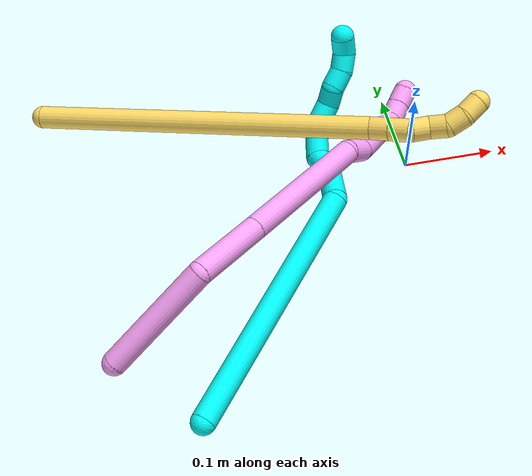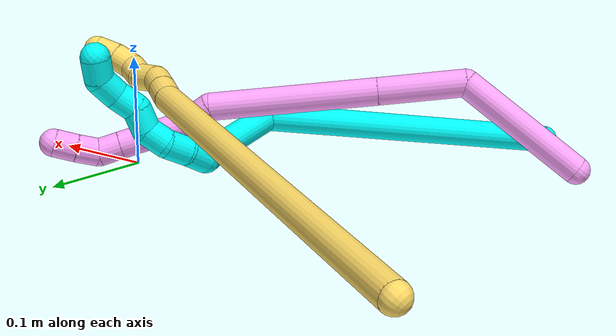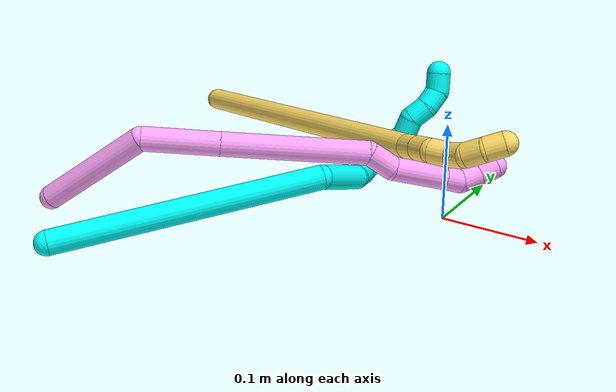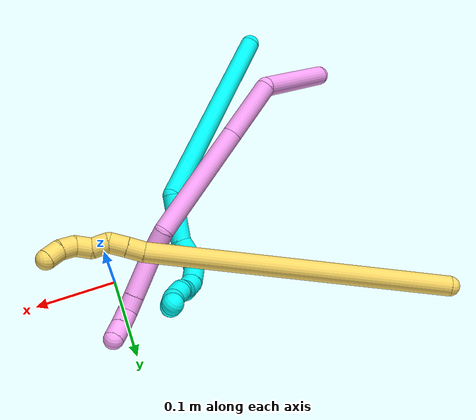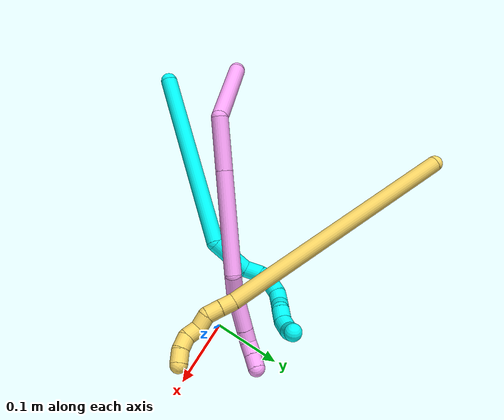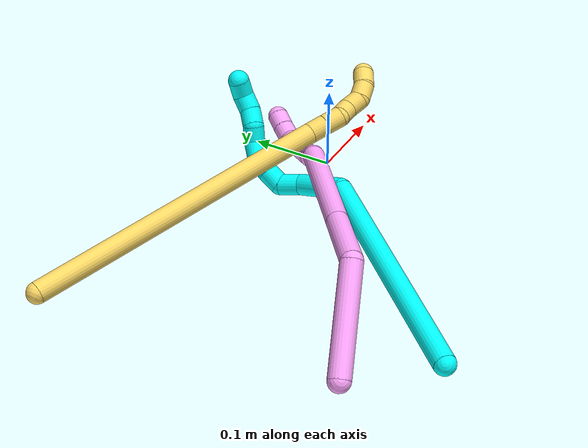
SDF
<sdf version="1.7">
 <world name="default">
  <model name="3">
   <static>0</static>
   <link name="3">
    <collision name="collision-cylinder-e_1_1_4">
     <pose>0.072057 0.089843 -0.072502 -2.24978 0.557988 -1.07978</pose>
     <geometry><cylinder><radius>0.0125</radius><length>0.272179</length></cylinder></geometry>
     <surface>
      <friction><ode><mu>1.16</mu><mu2>1.16</mu2><slip1>0</slip1><slip2>0</slip2></ode></friction>
      <contact><ode><kp>1e+06</kp><kd>1</kd><max_vel>0</max_vel><min_depth>0.001</min_depth></ode></contact>
     </surface>
    </collision>
    <visual name="visual-cylinder-e_1_1_4">
     <pose>0.072057 0.089843 -0.072502 -2.24978 0.557988 -1.07978</pose>
     <geometry><cylinder><radius>0.0125</radius><length>0.272179</length></cylinder></geometry>
     <material><ambient>0.003922 1 0.996078 1</ambient></material>
    </visual>
    <collision name="collision-cylinder-e_2_4_5">
     <pose>0.139743 0.203593 -0.161823 -2.18387 -0.148409 0.284452</pose>
     <geometry><cylinder><radius>0.0125</radius><length>0.059112</length></cylinder></geometry>
     <surface>
      <friction><ode><mu>1.16</mu><mu2>1.16</mu2><slip1>0</slip1><slip2>0</slip2></ode></friction>
      <contact><ode><kp>1e+06</kp><kd>1</kd><max_vel>0</max_vel><min_depth>0.001</min_depth></ode></contact>
     </surface>
    </collision>
    <visual name="visual-cylinder-e_2_4_5">
     <pose>0.139743 0.203593 -0.161823 -2.18387 -0.148409 0.284452</pose>
     <geometry><cylinder><radius>0.0125</radius><length>0.059112</length></cylinder></geometry>
     <material><ambient>0.003922 1 0.996078 1</ambient></material>
    </visual>
    <collision name="collision-cylinder-e_3_5_6">
     <pose>0.130841 0.239225 -0.181825 -1.83591 -0.357025 0.463431</pose>
     <geometry><cylinder><radius>0.0125</radius><length>0.025934</length></cylinder></geometry>
     <surface>
      <friction><ode><mu>1.16</mu><mu2>1.16</mu2><slip1>0</slip1><slip2>0</slip2></ode></friction>
      <contact><ode><kp>1e+06</kp><kd>1</kd><max_vel>0</max_vel><min_depth>0.001</min_depth></ode></contact>
     </surface>
    </collision>
    <visual name="visual-cylinder-e_3_5_6">
     <pose>0.130841 0.239225 -0.181825 -1.83591 -0.357025 0.463431</pose>
     <geometry><cylinder><radius>0.0125</radius><length>0.025934</length></cylinder></geometry>
     <material><ambient>0.003922 1 0.996078 1</ambient></material>
    </visual>
    <collision name="collision-cylinder-e_4_6_7">
     <pose>0.130277 0.260754 -0.185016 -1.57155 0.384526 -0.38481</pose>
     <geometry><cylinder><radius>0.0125</radius><length>0.021154</length></cylinder></geometry>
     <surface>
      <friction><ode><mu>1.16</mu><mu2>1.16</mu2><slip1>0</slip1><slip2>0</slip2></ode></friction>
      <contact><ode><kp>1e+06</kp><kd>1</kd><max_vel>0</max_vel><min_depth>0.001</min_depth></ode></contact>
     </surface>
    </collision>
    <visual name="visual-cylinder-e_4_6_7">
     <pose>0.130277 0.260754 -0.185016 -1.57155 0.384526 -0.38481</pose>
     <geometry><cylinder><radius>0.0125</radius><length>0.021154</length></cylinder></geometry>
     <material><ambient>0.003922 1 0.996078 1</ambient></material>
    </visual>
    <collision name="collision-cylinder-e_5_7_8">
     <pose>0.139706 0.279589 -0.186647 -1.74874 0.536873 -0.635622</pose>
     <geometry><cylinder><radius>0.0125</radius><length>0.021354</length></cylinder></geometry>
     <surface>
      <friction><ode><mu>1.16</mu><mu2>1.16</mu2><slip1>0</slip1><slip2>0</slip2></ode></friction>
      <contact><ode><kp>1e+06</kp><kd>1</kd><max_vel>0</max_vel><min_depth>0.001</min_depth></ode></contact>
     </surface>
    </collision>
    <visual name="visual-cylinder-e_5_7_8">
     <pose>0.139706 0.279589 -0.186647 -1.74874 0.536873 -0.635622</pose>
     <geometry><cylinder><radius>0.0125</radius><length>0.021354</length></cylinder></geometry>
     <material><ambient>0.003922 1 0.996078 1</ambient></material>
    </visual>
    <collision name="collision-cylinder-e_6_8_9">
     <pose>0.15318 0.294633 -0.189245 -1.73122 0.920716 -1.05504</pose>
     <geometry><cylinder><radius>0.0125</radius><length>0.020134</length></cylinder></geometry>
     <surface>
      <friction><ode><mu>1.16</mu><mu2>1.16</mu2><slip1>0</slip1><slip2>0</slip2></ode></friction>
      <contact><ode><kp>1e+06</kp><kd>1</kd><max_vel>0</max_vel><min_depth>0.001</min_depth></ode></contact>
     </surface>
    </collision>
    <visual name="visual-cylinder-e_6_8_9">
     <pose>0.15318 0.294633 -0.189245 -1.73122 0.920716 -1.05504</pose>
     <geometry><cylinder><radius>0.0125</radius><length>0.020134</length></cylinder></geometry>
     <material><ambient>0.003922 1 0.996078 1</ambient></material>
    </visual>
    <collision name="collision-cylinder-e_7_9_10">
     <pose>0.16926 0.304824 -0.185951 -0.77456 0.933665 -0.405483</pose>
     <geometry><cylinder><radius>0.0125</radius><length>0.020071</length></cylinder></geometry>
     <surface>
      <friction><ode><mu>1.16</mu><mu2>1.16</mu2><slip1>0</slip1><slip2>0</slip2></ode></friction>
      <contact><ode><kp>1e+06</kp><kd>1</kd><max_vel>0</max_vel><min_depth>0.001</min_depth></ode></contact>
     </surface>
    </collision>
    <visual name="visual-cylinder-e_7_9_10">
     <pose>0.16926 0.304824 -0.185951 -0.77456 0.933665 -0.405483</pose>
     <geometry><cylinder><radius>0.0125</radius><length>0.020071</length></cylinder></geometry>
     <material><ambient>0.003922 1 0.996078 1</ambient></material>
    </visual>
    <collision name="collision-cylinder-e_8_10_11">
     <pose>0.185365 0.314905 -0.182661 -1.73476 0.93063 -1.069</pose>
     <geometry><cylinder><radius>0.0125</radius><length>0.020045</length></cylinder></geometry>
     <surface>
      <friction><ode><mu>1.16</mu><mu2>1.16</mu2><slip1>0</slip1><slip2>0</slip2></ode></friction>
      <contact><ode><kp>1e+06</kp><kd>1</kd><max_vel>0</max_vel><min_depth>0.001</min_depth></ode></contact>
     </surface>
    </collision>
    <visual name="visual-cylinder-e_8_10_11">
     <pose>0.185365 0.314905 -0.182661 -1.73476 0.93063 -1.069</pose>
     <geometry><cylinder><radius>0.0125</radius><length>0.020045</length></cylinder></geometry>
     <material><ambient>0.003922 1 0.996078 1</ambient></material>
    </visual>
    <collision name="collision-cylinder-e_9_11_12">
     <pose>0.19989 0.328281 -0.18214 -1.3728 0.705463 -0.585859</pose>
     <geometry><cylinder><radius>0.0125</radius><length>0.020012</length></cylinder></geometry>
     <surface>
      <friction><ode><mu>1.16</mu><mu2>1.16</mu2><slip1>0</slip1><slip2>0</slip2></ode></friction>
      <contact><ode><kp>1e+06</kp><kd>1</kd><max_vel>0</max_vel><min_depth>0.001</min_depth></ode></contact>
     </surface>
    </collision>
    <visual name="visual-cylinder-e_9_11_12">
     <pose>0.19989 0.328281 -0.18214 -1.3728 0.705463 -0.585859</pose>
     <geometry><cylinder><radius>0.0125</radius><length>0.020012</length></cylinder></geometry>
     <material><ambient>0.003922 1 0.996078 1</ambient></material>
    </visual>
    <collision name="collision-cylinder-e_10_12_2">
     <pose>0.211898 0.340591 -0.173848 -0.619205 0.584625 -0.191939</pose>
     <geometry><cylinder><radius>0.0125</radius><length>0.020006</length></cylinder></geometry>
     <surface>
      <friction><ode><mu>1.16</mu><mu2>1.16</mu2><slip1>0</slip1><slip2>0</slip2></ode></friction>
      <contact><ode><kp>1e+06</kp><kd>1</kd><max_vel>0</max_vel><min_depth>0.001</min_depth></ode></contact>
     </surface>
    </collision>
    <visual name="visual-cylinder-e_10_12_2">
     <pose>0.211898 0.340591 -0.173848 -0.619205 0.584625 -0.191939</pose>
     <geometry><cylinder><radius>0.0125</radius><length>0.020006</length></cylinder></geometry>
     <material><ambient>0.003922 1 0.996078 1</ambient></material>
    </visual>
    <collision name="collision-sphere-2">
     <pose>0.217419 0.345432 -0.167056 0 -0 0</pose>
     <geometry><sphere><radius>0.0125</radius></sphere></geometry>
     <surface>
      <friction><ode><mu>1.16</mu><mu2>1.16</mu2><slip1>0</slip1><slip2>0</slip2></ode></friction>
      <contact><ode><kp>1e+06</kp><kd>1</kd><max_vel>0</max_vel><min_depth>0.001</min_depth></ode></contact>
     </surface>
    </collision>
    <visual name="visual-sphere-2">
     <pose>0.217419 0.345432 -0.167056 0 -0 0</pose>
     <geometry><sphere><radius>0.0125</radius></sphere></geometry>
     <material><ambient>0.003922 1 0.996078 1</ambient></material>
    </visual>
    <collision name="collision-sphere-12">
     <pose>0.206378 0.335749 -0.180641 0 -0 0</pose>
     <geometry><sphere><radius>0.0125</radius></sphere></geometry>
     <surface>
      <friction><ode><mu>1.16</mu><mu2>1.16</mu2><slip1>0</slip1><slip2>0</slip2></ode></friction>
      <contact><ode><kp>1e+06</kp><kd>1</kd><max_vel>0</max_vel><min_depth>0.001</min_depth></ode></contact>
     </surface>
    </collision>
    <visual name="visual-sphere-12">
     <pose>0.206378 0.335749 -0.180641 0 -0 0</pose>
     <geometry><sphere><radius>0.0125</radius></sphere></geometry>
     <material><ambient>0.003922 1 0.996078 1</ambient></material>
    </visual>
    <collision name="collision-sphere-11">
     <pose>0.193402 0.320812 -0.183638 0 -0 0</pose>
     <geometry><sphere><radius>0.0125</radius></sphere></geometry>
     <surface>
      <friction><ode><mu>1.16</mu><mu2>1.16</mu2><slip1>0</slip1><slip2>0</slip2></ode></friction>
      <contact><ode><kp>1e+06</kp><kd>1</kd><max_vel>0</max_vel><min_depth>0.001</min_depth></ode></contact>
     </surface>
    </collision>
    <visual name="visual-sphere-11">
     <pose>0.193402 0.320812 -0.183638 0 -0 0</pose>
     <geometry><sphere><radius>0.0125</radius></sphere></geometry>
     <material><ambient>0.003922 1 0.996078 1</ambient></material>
    </visual>
    <collision name="collision-sphere-10">
     <pose>0.177327 0.308999 -0.181684 0 -0 0</pose>
     <geometry><sphere><radius>0.0125</radius></sphere></geometry>
     <surface>
      <friction><ode><mu>1.16</mu><mu2>1.16</mu2><slip1>0</slip1><slip2>0</slip2></ode></friction>
      <contact><ode><kp>1e+06</kp><kd>1</kd><max_vel>0</max_vel><min_depth>0.001</min_depth></ode></contact>
     </surface>
    </collision>
    <visual name="visual-sphere-10">
     <pose>0.177327 0.308999 -0.181684 0 -0 0</pose>
     <geometry><sphere><radius>0.0125</radius></sphere></geometry>
     <material><ambient>0.003922 1 0.996078 1</ambient></material>
    </visual>
    <collision name="collision-sphere-9">
     <pose>0.161193 0.300648 -0.190218 0 -0 0</pose>
     <geometry><sphere><radius>0.0125</radius></sphere></geometry>
     <surface>
      <friction><ode><mu>1.16</mu><mu2>1.16</mu2><slip1>0</slip1><slip2>0</slip2></ode></friction>
      <contact><ode><kp>1e+06</kp><kd>1</kd><max_vel>0</max_vel><min_depth>0.001</min_depth></ode></contact>
     </surface>
    </collision>
    <visual name="visual-sphere-9">
     <pose>0.161193 0.300648 -0.190218 0 -0 0</pose>
     <geometry><sphere><radius>0.0125</radius></sphere></geometry>
     <material><ambient>0.003922 1 0.996078 1</ambient></material>
    </visual>
    <collision name="collision-sphere-4">
     <pose>0.144114 0.179685 -0.145004 0 -0 0</pose>
     <geometry><sphere><radius>0.0125</radius></sphere></geometry>
     <surface>
      <friction><ode><mu>1.16</mu><mu2>1.16</mu2><slip1>0</slip1><slip2>0</slip2></ode></friction>
      <contact><ode><kp>1e+06</kp><kd>1</kd><max_vel>0</max_vel><min_depth>0.001</min_depth></ode></contact>
     </surface>
    </collision>
    <visual name="visual-sphere-4">
     <pose>0.144114 0.179685 -0.145004 0 -0 0</pose>
     <geometry><sphere><radius>0.0125</radius></sphere></geometry>
     <material><ambient>0.003922 1 0.996078 1</ambient></material>
    </visual>
    <collision name="collision-sphere-1">
     <geometry><sphere><radius>0.0125</radius></sphere></geometry>
     <surface>
      <friction><ode><mu>1.16</mu><mu2>1.16</mu2><slip1>0</slip1><slip2>0</slip2></ode></friction>
      <contact><ode><kp>1e+06</kp><kd>1</kd><max_vel>0</max_vel><min_depth>0.001</min_depth></ode></contact>
     </surface>
    </collision>
    <visual name="visual-sphere-1">
     <geometry><sphere><radius>0.0125</radius></sphere></geometry>
     <material><ambient>0.003922 1 0.996078 1</ambient></material>
    </visual>
    <collision name="collision-sphere-8">
     <pose>0.145166 0.288619 -0.188271 0 -0 0</pose>
     <geometry><sphere><radius>0.0125</radius></sphere></geometry>
     <surface>
      <friction><ode><mu>1.16</mu><mu2>1.16</mu2><slip1>0</slip1><slip2>0</slip2></ode></friction>
      <contact><ode><kp>1e+06</kp><kd>1</kd><max_vel>0</max_vel><min_depth>0.001</min_depth></ode></contact>
     </surface>
    </collision>
    <visual name="visual-sphere-8">
     <pose>0.145166 0.288619 -0.188271 0 -0 0</pose>
     <geometry><sphere><radius>0.0125</radius></sphere></geometry>
     <material><ambient>0.003922 1 0.996078 1</ambient></material>
    </visual>
    <collision name="collision-sphere-5">
     <pose>0.135373 0.2275 -0.178642 0 -0 0</pose>
     <geometry><sphere><radius>0.0125</radius></sphere></geometry>
     <surface>
      <friction><ode><mu>1.16</mu><mu2>1.16</mu2><slip1>0</slip1><slip2>0</slip2></ode></friction>
      <contact><ode><kp>1e+06</kp><kd>1</kd><max_vel>0</max_vel><min_depth>0.001</min_depth></ode></contact>
     </surface>
    </collision>
    <visual name="visual-sphere-5">
     <pose>0.135373 0.2275 -0.178642 0 -0 0</pose>
     <geometry><sphere><radius>0.0125</radius></sphere></geometry>
     <material><ambient>0.003922 1 0.996078 1</ambient></material>
    </visual>
    <collision name="collision-sphere-6">
     <pose>0.12631 0.25095 -0.185008 0 -0 0</pose>
     <geometry><sphere><radius>0.0125</radius></sphere></geometry>
     <surface>
      <friction><ode><mu>1.16</mu><mu2>1.16</mu2><slip1>0</slip1><slip2>0</slip2></ode></friction>
      <contact><ode><kp>1e+06</kp><kd>1</kd><max_vel>0</max_vel><min_depth>0.001</min_depth></ode></contact>
     </surface>
    </collision>
    <visual name="visual-sphere-6">
     <pose>0.12631 0.25095 -0.185008 0 -0 0</pose>
     <geometry><sphere><radius>0.0125</radius></sphere></geometry>
     <material><ambient>0.003922 1 0.996078 1</ambient></material>
    </visual>
    <collision name="collision-sphere-7">
     <pose>0.134245 0.270559 -0.185023 0 -0 0</pose>
     <geometry><sphere><radius>0.0125</radius></sphere></geometry>
     <surface>
      <friction><ode><mu>1.16</mu><mu2>1.16</mu2><slip1>0</slip1><slip2>0</slip2></ode></friction>
      <contact><ode><kp>1e+06</kp><kd>1</kd><max_vel>0</max_vel><min_depth>0.001</min_depth></ode></contact>
     </surface>
    </collision>
    <visual name="visual-sphere-7">
     <pose>0.134245 0.270559 -0.185023 0 -0 0</pose>
     <geometry><sphere><radius>0.0125</radius></sphere></geometry>
     <material><ambient>0.003922 1 0.996078 1</ambient></material>
    </visual>
    <inertial>
     <pose>0.110883 0.171848 -0.120482 0 -0 0</pose>
     <mass>0.5</mass>
     <inertia>
      <ixx>-0.000542</ixx>
      <ixy>0</ixy>
      <ixz>0</ixz>
      <iyy>-0.001127</iyy>
      <iyz>0</iyz>
      <izz>-0.002053</izz>
     </inertia>
    </inertial>
   </link>
   <pose>-0.274356 -0.27525 0.012446 0.328549 -0.710198 -0.063316</pose>
  </model>
  <model name="4">
   <static>0</static>
   <link name="4">
    <collision name="collision-cylinder-e_1_1_4">
     <pose>0.05941 0.014817 0.002351 -1.41345 1.32346 -1.17376</pose>
     <geometry><cylinder><radius>0.0125</radius><length>0.12255</length></cylinder></geometry>
     <surface>
      <friction><ode><mu>1.16</mu><mu2>1.16</mu2><slip1>0</slip1><slip2>0</slip2></ode></friction>
      <contact><ode><kp>1e+06</kp><kd>1</kd><max_vel>0</max_vel><min_depth>0.001</min_depth></ode></contact>
     </surface>
    </collision>
    <visual name="visual-cylinder-e_1_1_4">
     <pose>0.05941 0.014817 0.002351 -1.41345 1.32346 -1.17376</pose>
     <geometry><cylinder><radius>0.0125</radius><length>0.12255</length></cylinder></geometry>
     <material><ambient>1 0.65098 0.996078 1</ambient></material>
    </visual>
    <collision name="collision-cylinder-e_2_4_5">
     <pose>0.14575 0.041398 -0.021327 -2.71709 0.755942 -2.1471</pose>
     <geometry><cylinder><radius>0.0125</radius><length>0.078513</length></cylinder></geometry>
     <surface>
      <friction><ode><mu>1.16</mu><mu2>1.16</mu2><slip1>0</slip1><slip2>0</slip2></ode></friction>
      <contact><ode><kp>1e+06</kp><kd>1</kd><max_vel>0</max_vel><min_depth>0.001</min_depth></ode></contact>
     </surface>
    </collision>
    <visual name="visual-cylinder-e_2_4_5">
     <pose>0.14575 0.041398 -0.021327 -2.71709 0.755942 -2.1471</pose>
     <geometry><cylinder><radius>0.0125</radius><length>0.078513</length></cylinder></geometry>
     <material><ambient>1 0.65098 0.996078 1</ambient></material>
    </visual>
    <collision name="collision-cylinder-e_3_5_6">
     <pose>0.224286 0.075896 -0.096791 -2.71055 0.758954 -2.13754</pose>
     <geometry><cylinder><radius>0.0125</radius><length>0.149988</length></cylinder></geometry>
     <surface>
      <friction><ode><mu>1.16</mu><mu2>1.16</mu2><slip1>0</slip1><slip2>0</slip2></ode></friction>
      <contact><ode><kp>1e+06</kp><kd>1</kd><max_vel>0</max_vel><min_depth>0.001</min_depth></ode></contact>
     </surface>
    </collision>
    <visual name="visual-cylinder-e_3_5_6">
     <pose>0.224286 0.075896 -0.096791 -2.71055 0.758954 -2.13754</pose>
     <geometry><cylinder><radius>0.0125</radius><length>0.149988</length></cylinder></geometry>
     <material><ambient>1 0.65098 0.996078 1</ambient></material>
    </visual>
    <collision name="collision-cylinder-e_4_6_7">
     <pose>0.280829 0.099735 -0.160241 -3.06291 0.337575 -2.68757</pose>
     <geometry><cylinder><radius>0.0125</radius><length>0.029798</length></cylinder></geometry>
     <surface>
      <friction><ode><mu>1.16</mu><mu2>1.16</mu2><slip1>0</slip1><slip2>0</slip2></ode></friction>
      <contact><ode><kp>1e+06</kp><kd>1</kd><max_vel>0</max_vel><min_depth>0.001</min_depth></ode></contact>
     </surface>
    </collision>
    <visual name="visual-cylinder-e_4_6_7">
     <pose>0.280829 0.099735 -0.160241 -3.06291 0.337575 -2.68757</pose>
     <geometry><cylinder><radius>0.0125</radius><length>0.029798</length></cylinder></geometry>
     <material><ambient>1 0.65098 0.996078 1</ambient></material>
    </visual>
    <collision name="collision-cylinder-e_5_7_8">
     <pose>0.299942 0.111594 -0.197192 -2.70317 0.510284 -1.72776</pose>
     <geometry><cylinder><radius>0.0125</radius><length>0.058059</length></cylinder></geometry>
     <surface>
      <friction><ode><mu>1.16</mu><mu2>1.16</mu2><slip1>0</slip1><slip2>0</slip2></ode></friction>
      <contact><ode><kp>1e+06</kp><kd>1</kd><max_vel>0</max_vel><min_depth>0.001</min_depth></ode></contact>
     </surface>
    </collision>
    <visual name="visual-cylinder-e_5_7_8">
     <pose>0.299942 0.111594 -0.197192 -2.70317 0.510284 -1.72776</pose>
     <geometry><cylinder><radius>0.0125</radius><length>0.058059</length></cylinder></geometry>
     <material><ambient>1 0.65098 0.996078 1</ambient></material>
    </visual>
    <collision name="collision-cylinder-e_6_8_9">
     <pose>0.318993 0.126071 -0.228255 -2.71203 0.498914 -1.72534</pose>
     <geometry><cylinder><radius>0.0125</radius><length>0.020363</length></cylinder></geometry>
     <surface>
      <friction><ode><mu>1.16</mu><mu2>1.16</mu2><slip1>0</slip1><slip2>0</slip2></ode></friction>
      <contact><ode><kp>1e+06</kp><kd>1</kd><max_vel>0</max_vel><min_depth>0.001</min_depth></ode></contact>
     </surface>
    </collision>
    <visual name="visual-cylinder-e_6_8_9">
     <pose>0.318993 0.126071 -0.228255 -2.71203 0.498914 -1.72534</pose>
     <geometry><cylinder><radius>0.0125</radius><length>0.020363</length></cylinder></geometry>
     <material><ambient>1 0.65098 0.996078 1</ambient></material>
    </visual>
    <collision name="collision-cylinder-e_7_9_10">
     <pose>0.331119 0.136146 -0.240051 -2.0945 0.779947 -1.23747</pose>
     <geometry><cylinder><radius>0.0125</radius><length>0.020633</length></cylinder></geometry>
     <surface>
      <friction><ode><mu>1.16</mu><mu2>1.16</mu2><slip1>0</slip1><slip2>0</slip2></ode></friction>
      <contact><ode><kp>1e+06</kp><kd>1</kd><max_vel>0</max_vel><min_depth>0.001</min_depth></ode></contact>
     </surface>
    </collision>
    <visual name="visual-cylinder-e_7_9_10">
     <pose>0.331119 0.136146 -0.240051 -2.0945 0.779947 -1.23747</pose>
     <geometry><cylinder><radius>0.0125</radius><length>0.020633</length></cylinder></geometry>
     <material><ambient>1 0.65098 0.996078 1</ambient></material>
    </visual>
    <collision name="collision-cylinder-e_8_10_2">
     <pose>0.345732 0.148559 -0.246895 -2.05334 0.821612 -1.24795</pose>
     <geometry><cylinder><radius>0.0125</radius><length>0.020096</length></cylinder></geometry>
     <surface>
      <friction><ode><mu>1.16</mu><mu2>1.16</mu2><slip1>0</slip1><slip2>0</slip2></ode></friction>
      <contact><ode><kp>1e+06</kp><kd>1</kd><max_vel>0</max_vel><min_depth>0.001</min_depth></ode></contact>
     </surface>
    </collision>
    <visual name="visual-cylinder-e_8_10_2">
     <pose>0.345732 0.148559 -0.246895 -2.05334 0.821612 -1.24795</pose>
     <geometry><cylinder><radius>0.0125</radius><length>0.020096</length></cylinder></geometry>
     <material><ambient>1 0.65098 0.996078 1</ambient></material>
    </visual>
    <collision name="collision-sphere-2">
     <pose>0.353089 0.154621 -0.25007 0 -0 0</pose>
     <geometry><sphere><radius>0.0125</radius></sphere></geometry>
     <surface>
      <friction><ode><mu>1.16</mu><mu2>1.16</mu2><slip1>0</slip1><slip2>0</slip2></ode></friction>
      <contact><ode><kp>1e+06</kp><kd>1</kd><max_vel>0</max_vel><min_depth>0.001</min_depth></ode></contact>
     </surface>
    </collision>
    <visual name="visual-sphere-2">
     <pose>0.353089 0.154621 -0.25007 0 -0 0</pose>
     <geometry><sphere><radius>0.0125</radius></sphere></geometry>
     <material><ambient>1 0.65098 0.996078 1</ambient></material>
    </visual>
    <collision name="collision-sphere-10">
     <pose>0.338374 0.142497 -0.243719 0 -0 0</pose>
     <geometry><sphere><radius>0.0125</radius></sphere></geometry>
     <surface>
      <friction><ode><mu>1.16</mu><mu2>1.16</mu2><slip1>0</slip1><slip2>0</slip2></ode></friction>
      <contact><ode><kp>1e+06</kp><kd>1</kd><max_vel>0</max_vel><min_depth>0.001</min_depth></ode></contact>
     </surface>
    </collision>
    <visual name="visual-sphere-10">
     <pose>0.338374 0.142497 -0.243719 0 -0 0</pose>
     <geometry><sphere><radius>0.0125</radius></sphere></geometry>
     <material><ambient>1 0.65098 0.996078 1</ambient></material>
    </visual>
    <collision name="collision-sphere-9">
     <pose>0.323864 0.129795 -0.236383 0 -0 0</pose>
     <geometry><sphere><radius>0.0125</radius></sphere></geometry>
     <surface>
      <friction><ode><mu>1.16</mu><mu2>1.16</mu2><slip1>0</slip1><slip2>0</slip2></ode></friction>
      <contact><ode><kp>1e+06</kp><kd>1</kd><max_vel>0</max_vel><min_depth>0.001</min_depth></ode></contact>
     </surface>
    </collision>
    <visual name="visual-sphere-9">
     <pose>0.323864 0.129795 -0.236383 0 -0 0</pose>
     <geometry><sphere><radius>0.0125</radius></sphere></geometry>
     <material><ambient>1 0.65098 0.996078 1</ambient></material>
    </visual>
    <collision name="collision-sphere-4">
     <pose>0.118821 0.029633 0.004701 0 -0 0</pose>
     <geometry><sphere><radius>0.0125</radius></sphere></geometry>
     <surface>
      <friction><ode><mu>1.16</mu><mu2>1.16</mu2><slip1>0</slip1><slip2>0</slip2></ode></friction>
      <contact><ode><kp>1e+06</kp><kd>1</kd><max_vel>0</max_vel><min_depth>0.001</min_depth></ode></contact>
     </surface>
    </collision>
    <visual name="visual-sphere-4">
     <pose>0.118821 0.029633 0.004701 0 -0 0</pose>
     <geometry><sphere><radius>0.0125</radius></sphere></geometry>
     <material><ambient>1 0.65098 0.996078 1</ambient></material>
    </visual>
    <collision name="collision-sphere-1">
     <geometry><sphere><radius>0.0125</radius></sphere></geometry>
     <surface>
      <friction><ode><mu>1.16</mu><mu2>1.16</mu2><slip1>0</slip1><slip2>0</slip2></ode></friction>
      <contact><ode><kp>1e+06</kp><kd>1</kd><max_vel>0</max_vel><min_depth>0.001</min_depth></ode></contact>
     </surface>
    </collision>
    <visual name="visual-sphere-1">
     <geometry><sphere><radius>0.0125</radius></sphere></geometry>
     <material><ambient>1 0.65098 0.996078 1</ambient></material>
    </visual>
    <collision name="collision-sphere-8">
     <pose>0.314121 0.122348 -0.220127 0 -0 0</pose>
     <geometry><sphere><radius>0.0125</radius></sphere></geometry>
     <surface>
      <friction><ode><mu>1.16</mu><mu2>1.16</mu2><slip1>0</slip1><slip2>0</slip2></ode></friction>
      <contact><ode><kp>1e+06</kp><kd>1</kd><max_vel>0</max_vel><min_depth>0.001</min_depth></ode></contact>
     </surface>
    </collision>
    <visual name="visual-sphere-8">
     <pose>0.314121 0.122348 -0.220127 0 -0 0</pose>
     <geometry><sphere><radius>0.0125</radius></sphere></geometry>
     <material><ambient>1 0.65098 0.996078 1</ambient></material>
    </visual>
    <collision name="collision-sphere-5">
     <pose>0.172679 0.053162 -0.047356 0 -0 0</pose>
     <geometry><sphere><radius>0.0125</radius></sphere></geometry>
     <surface>
      <friction><ode><mu>1.16</mu><mu2>1.16</mu2><slip1>0</slip1><slip2>0</slip2></ode></friction>
      <contact><ode><kp>1e+06</kp><kd>1</kd><max_vel>0</max_vel><min_depth>0.001</min_depth></ode></contact>
     </surface>
    </collision>
    <visual name="visual-sphere-5">
     <pose>0.172679 0.053162 -0.047356 0 -0 0</pose>
     <geometry><sphere><radius>0.0125</radius></sphere></geometry>
     <material><ambient>1 0.65098 0.996078 1</ambient></material>
    </visual>
    <collision name="collision-sphere-6">
     <pose>0.275894 0.09863 -0.146226 0 -0 0</pose>
     <geometry><sphere><radius>0.0125</radius></sphere></geometry>
     <surface>
      <friction><ode><mu>1.16</mu><mu2>1.16</mu2><slip1>0</slip1><slip2>0</slip2></ode></friction>
      <contact><ode><kp>1e+06</kp><kd>1</kd><max_vel>0</max_vel><min_depth>0.001</min_depth></ode></contact>
     </surface>
    </collision>
    <visual name="visual-sphere-6">
     <pose>0.275894 0.09863 -0.146226 0 -0 0</pose>
     <geometry><sphere><radius>0.0125</radius></sphere></geometry>
     <material><ambient>1 0.65098 0.996078 1</ambient></material>
    </visual>
    <collision name="collision-sphere-7">
     <pose>0.285764 0.100841 -0.174256 0 -0 0</pose>
     <geometry><sphere><radius>0.0125</radius></sphere></geometry>
     <surface>
      <friction><ode><mu>1.16</mu><mu2>1.16</mu2><slip1>0</slip1><slip2>0</slip2></ode></friction>
      <contact><ode><kp>1e+06</kp><kd>1</kd><max_vel>0</max_vel><min_depth>0.001</min_depth></ode></contact>
     </surface>
    </collision>
    <visual name="visual-sphere-7">
     <pose>0.285764 0.100841 -0.174256 0 -0 0</pose>
     <geometry><sphere><radius>0.0125</radius></sphere></geometry>
     <material><ambient>1 0.65098 0.996078 1</ambient></material>
    </visual>
    <inertial>
     <pose>0.196844 0.068524 -0.09338 0 -0 0</pose>
     <mass>0.5</mass>
     <inertia>
      <ixx>-0.00035</ixx>
      <ixy>0</ixy>
      <ixz>0</ixz>
      <iyy>0.000156</iyy>
      <iyz>0</iyz>
      <izz>-0.000561</izz>
     </inertia>
    </inertial>
   </link>
   <pose>-0.346931 -0.195406 0.011497 0.372912 -0.5177 0.108504</pose>
  </model>
  <model name="5">
   <static>0</static>
   <link name="5">
    <collision name="collision-cylinder-e_1_1_4">
     <pose>0.095794 -0.032602 -0.158162 2.93831 0.535404 2.42959</pose>
     <geometry><cylinder><radius>0.0125</radius><length>0.375525</length></cylinder></geometry>
     <surface>
      <friction><ode><mu>1.16</mu><mu2>1.16</mu2><slip1>0</slip1><slip2>0</slip2></ode></friction>
      <contact><ode><kp>1e+06</kp><kd>1</kd><max_vel>0</max_vel><min_depth>0.001</min_depth></ode></contact>
     </surface>
    </collision>
    <visual name="visual-cylinder-e_1_1_4">
     <pose>0.095794 -0.032602 -0.158162 2.93831 0.535404 2.42959</pose>
     <geometry><cylinder><radius>0.0125</radius><length>0.375525</length></cylinder></geometry>
     <material><ambient>1 0.858824 0.4 1</ambient></material>
    </visual>
    <collision name="collision-cylinder-e_2_4_5">
     <pose>0.1976 -0.065316 -0.325078 3.12864 0.601739 3.09985</pose>
     <geometry><cylinder><radius>0.0125</radius><length>0.021239</length></cylinder></geometry>
     <surface>
      <friction><ode><mu>1.16</mu><mu2>1.16</mu2><slip1>0</slip1><slip2>0</slip2></ode></friction>
      <contact><ode><kp>1e+06</kp><kd>1</kd><max_vel>0</max_vel><min_depth>0.001</min_depth></ode></contact>
     </surface>
    </collision>
    <visual name="visual-cylinder-e_2_4_5">
     <pose>0.1976 -0.065316 -0.325078 3.12864 0.601739 3.09985</pose>
     <geometry><cylinder><radius>0.0125</radius><length>0.021239</length></cylinder></geometry>
     <material><ambient>1 0.858824 0.4 1</ambient></material>
    </visual>
    <collision name="collision-cylinder-e_3_5_6">
     <pose>0.209845 -0.065931 -0.342891 3.0863 0.601962 2.96389</pose>
     <geometry><cylinder><radius>0.0125</radius><length>0.022017</length></cylinder></geometry>
     <surface>
      <friction><ode><mu>1.16</mu><mu2>1.16</mu2><slip1>0</slip1><slip2>0</slip2></ode></friction>
      <contact><ode><kp>1e+06</kp><kd>1</kd><max_vel>0</max_vel><min_depth>0.001</min_depth></ode></contact>
     </surface>
    </collision>
    <visual name="visual-cylinder-e_3_5_6">
     <pose>0.209845 -0.065931 -0.342891 3.0863 0.601962 2.96389</pose>
     <geometry><cylinder><radius>0.0125</radius><length>0.022017</length></cylinder></geometry>
     <material><ambient>1 0.858824 0.4 1</ambient></material>
    </visual>
    <collision name="collision-cylinder-e_4_6_7">
     <pose>0.218183 -0.071624 -0.360691 2.60561 0.204136 0.71403</pose>
     <geometry><cylinder><radius>0.0125</radius><length>0.020762</length></cylinder></geometry>
     <surface>
      <friction><ode><mu>1.16</mu><mu2>1.16</mu2><slip1>0</slip1><slip2>0</slip2></ode></friction>
      <contact><ode><kp>1e+06</kp><kd>1</kd><max_vel>0</max_vel><min_depth>0.001</min_depth></ode></contact>
     </surface>
    </collision>
    <visual name="visual-cylinder-e_4_6_7">
     <pose>0.218183 -0.071624 -0.360691 2.60561 0.204136 0.71403</pose>
     <geometry><cylinder><radius>0.0125</radius><length>0.020762</length></cylinder></geometry>
     <material><ambient>1 0.858824 0.4 1</ambient></material>
    </visual>
    <collision name="collision-cylinder-e_5_7_8">
     <pose>0.224649 -0.077323 -0.378624 3.08646 0.442334 2.89756</pose>
     <geometry><cylinder><radius>0.0125</radius><length>0.020375</length></cylinder></geometry>
     <surface>
      <friction><ode><mu>1.16</mu><mu2>1.16</mu2><slip1>0</slip1><slip2>0</slip2></ode></friction>
      <contact><ode><kp>1e+06</kp><kd>1</kd><max_vel>0</max_vel><min_depth>0.001</min_depth></ode></contact>
     </surface>
    </collision>
    <visual name="visual-cylinder-e_5_7_8">
     <pose>0.224649 -0.077323 -0.378624 3.08646 0.442334 2.89756</pose>
     <geometry><cylinder><radius>0.0125</radius><length>0.020375</length></cylinder></geometry>
     <material><ambient>1 0.858824 0.4 1</ambient></material>
    </visual>
    <collision name="collision-cylinder-e_6_8_9">
     <pose>0.228137 -0.079326 -0.397684 2.99109 -0.087145 -1.04863</pose>
     <geometry><cylinder><radius>0.0125</radius><length>0.020036</length></cylinder></geometry>
     <surface>
      <friction><ode><mu>1.16</mu><mu2>1.16</mu2><slip1>0</slip1><slip2>0</slip2></ode></friction>
      <contact><ode><kp>1e+06</kp><kd>1</kd><max_vel>0</max_vel><min_depth>0.001</min_depth></ode></contact>
     </surface>
    </collision>
    <visual name="visual-cylinder-e_6_8_9">
     <pose>0.228137 -0.079326 -0.397684 2.99109 -0.087145 -1.04863</pose>
     <geometry><cylinder><radius>0.0125</radius><length>0.020036</length></cylinder></geometry>
     <material><ambient>1 0.858824 0.4 1</ambient></material>
    </visual>
    <collision name="collision-cylinder-e_7_9_2">
     <pose>0.223779 -0.083869 -0.416441 2.81147 -0.355263 -1.64557</pose>
     <geometry><cylinder><radius>0.0125</radius><length>0.020046</length></cylinder></geometry>
     <surface>
      <friction><ode><mu>1.16</mu><mu2>1.16</mu2><slip1>0</slip1><slip2>0</slip2></ode></friction>
      <contact><ode><kp>1e+06</kp><kd>1</kd><max_vel>0</max_vel><min_depth>0.001</min_depth></ode></contact>
     </surface>
    </collision>
    <visual name="visual-cylinder-e_7_9_2">
     <pose>0.223779 -0.083869 -0.416441 2.81147 -0.355263 -1.64557</pose>
     <geometry><cylinder><radius>0.0125</radius><length>0.020046</length></cylinder></geometry>
     <material><ambient>1 0.858824 0.4 1</ambient></material>
    </visual>
    <collision name="collision-sphere-2">
     <pose>0.220293 -0.086915 -0.425331 0 -0 0</pose>
     <geometry><sphere><radius>0.0125</radius></sphere></geometry>
     <surface>
      <friction><ode><mu>1.16</mu><mu2>1.16</mu2><slip1>0</slip1><slip2>0</slip2></ode></friction>
      <contact><ode><kp>1e+06</kp><kd>1</kd><max_vel>0</max_vel><min_depth>0.001</min_depth></ode></contact>
     </surface>
    </collision>
    <visual name="visual-sphere-2">
     <pose>0.220293 -0.086915 -0.425331 0 -0 0</pose>
     <geometry><sphere><radius>0.0125</radius></sphere></geometry>
     <material><ambient>1 0.858824 0.4 1</ambient></material>
    </visual>
    <collision name="collision-sphere-9">
     <pose>0.227265 -0.080823 -0.407551 0 -0 0</pose>
     <geometry><sphere><radius>0.0125</radius></sphere></geometry>
     <surface>
      <friction><ode><mu>1.16</mu><mu2>1.16</mu2><slip1>0</slip1><slip2>0</slip2></ode></friction>
      <contact><ode><kp>1e+06</kp><kd>1</kd><max_vel>0</max_vel><min_depth>0.001</min_depth></ode></contact>
     </surface>
    </collision>
    <visual name="visual-sphere-9">
     <pose>0.227265 -0.080823 -0.407551 0 -0 0</pose>
     <geometry><sphere><radius>0.0125</radius></sphere></geometry>
     <material><ambient>1 0.858824 0.4 1</ambient></material>
    </visual>
    <collision name="collision-sphere-4">
     <pose>0.191588 -0.065203 -0.316324 0 -0 0</pose>
     <geometry><sphere><radius>0.0125</radius></sphere></geometry>
     <surface>
      <friction><ode><mu>1.16</mu><mu2>1.16</mu2><slip1>0</slip1><slip2>0</slip2></ode></friction>
      <contact><ode><kp>1e+06</kp><kd>1</kd><max_vel>0</max_vel><min_depth>0.001</min_depth></ode></contact>
     </surface>
    </collision>
    <visual name="visual-sphere-4">
     <pose>0.191588 -0.065203 -0.316324 0 -0 0</pose>
     <geometry><sphere><radius>0.0125</radius></sphere></geometry>
     <material><ambient>1 0.858824 0.4 1</ambient></material>
    </visual>
    <collision name="collision-sphere-1">
     <geometry><sphere><radius>0.0125</radius></sphere></geometry>
     <surface>
      <friction><ode><mu>1.16</mu><mu2>1.16</mu2><slip1>0</slip1><slip2>0</slip2></ode></friction>
      <contact><ode><kp>1e+06</kp><kd>1</kd><max_vel>0</max_vel><min_depth>0.001</min_depth></ode></contact>
     </surface>
    </collision>
    <visual name="visual-sphere-1">
     <geometry><sphere><radius>0.0125</radius></sphere></geometry>
     <material><ambient>1 0.858824 0.4 1</ambient></material>
    </visual>
    <collision name="collision-sphere-8">
     <pose>0.229009 -0.07783 -0.387817 0 -0 0</pose>
     <geometry><sphere><radius>0.0125</radius></sphere></geometry>
     <surface>
      <friction><ode><mu>1.16</mu><mu2>1.16</mu2><slip1>0</slip1><slip2>0</slip2></ode></friction>
      <contact><ode><kp>1e+06</kp><kd>1</kd><max_vel>0</max_vel><min_depth>0.001</min_depth></ode></contact>
     </surface>
    </collision>
    <visual name="visual-sphere-8">
     <pose>0.229009 -0.07783 -0.387817 0 -0 0</pose>
     <geometry><sphere><radius>0.0125</radius></sphere></geometry>
     <material><ambient>1 0.858824 0.4 1</ambient></material>
    </visual>
    <collision name="collision-sphere-5">
     <pose>0.203611 -0.06543 -0.333832 0 -0 0</pose>
     <geometry><sphere><radius>0.0125</radius></sphere></geometry>
     <surface>
      <friction><ode><mu>1.16</mu><mu2>1.16</mu2><slip1>0</slip1><slip2>0</slip2></ode></friction>
      <contact><ode><kp>1e+06</kp><kd>1</kd><max_vel>0</max_vel><min_depth>0.001</min_depth></ode></contact>
     </surface>
    </collision>
    <visual name="visual-sphere-5">
     <pose>0.203611 -0.06543 -0.333832 0 -0 0</pose>
     <geometry><sphere><radius>0.0125</radius></sphere></geometry>
     <material><ambient>1 0.858824 0.4 1</ambient></material>
    </visual>
    <collision name="collision-sphere-6">
     <pose>0.216079 -0.066433 -0.351951 0 -0 0</pose>
     <geometry><sphere><radius>0.0125</radius></sphere></geometry>
     <surface>
      <friction><ode><mu>1.16</mu><mu2>1.16</mu2><slip1>0</slip1><slip2>0</slip2></ode></friction>
      <contact><ode><kp>1e+06</kp><kd>1</kd><max_vel>0</max_vel><min_depth>0.001</min_depth></ode></contact>
     </surface>
    </collision>
    <visual name="visual-sphere-6">
     <pose>0.216079 -0.066433 -0.351951 0 -0 0</pose>
     <geometry><sphere><radius>0.0125</radius></sphere></geometry>
     <material><ambient>1 0.858824 0.4 1</ambient></material>
    </visual>
    <collision name="collision-sphere-7">
     <pose>0.220288 -0.076816 -0.369431 0 -0 0</pose>
     <geometry><sphere><radius>0.0125</radius></sphere></geometry>
     <surface>
      <friction><ode><mu>1.16</mu><mu2>1.16</mu2><slip1>0</slip1><slip2>0</slip2></ode></friction>
      <contact><ode><kp>1e+06</kp><kd>1</kd><max_vel>0</max_vel><min_depth>0.001</min_depth></ode></contact>
     </surface>
    </collision>
    <visual name="visual-sphere-7">
     <pose>0.220288 -0.076816 -0.369431 0 -0 0</pose>
     <geometry><sphere><radius>0.0125</radius></sphere></geometry>
     <material><ambient>1 0.858824 0.4 1</ambient></material>
    </visual>
    <inertial>
     <pose>0.125908 -0.042829 -0.210734 0 -0 0</pose>
     <mass>0.5</mass>
     <inertia>
      <ixx>-0.000381</ixx>
      <ixy>0</ixy>
      <ixz>0</ixz>
      <iyy>0.006065</iyy>
      <iyz>0</iyz>
      <izz>-0.001524</izz>
     </inertia>
    </inertial>
   </link>
   <pose>-0.387748 0.143995 0.012507 2.15453 0.312478 -1.33229</pose>
  </model>
 </world>
</sdf>
